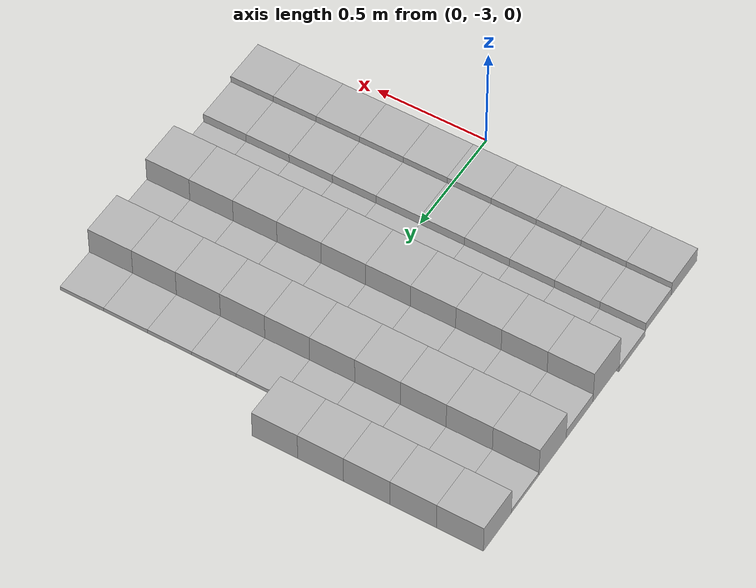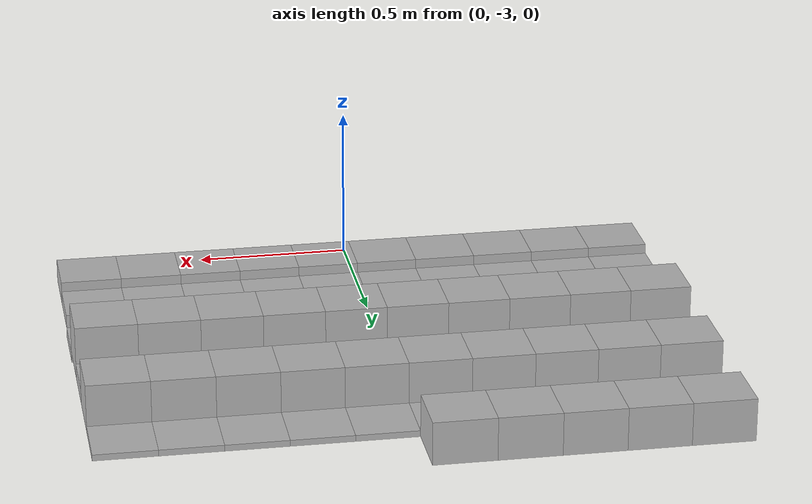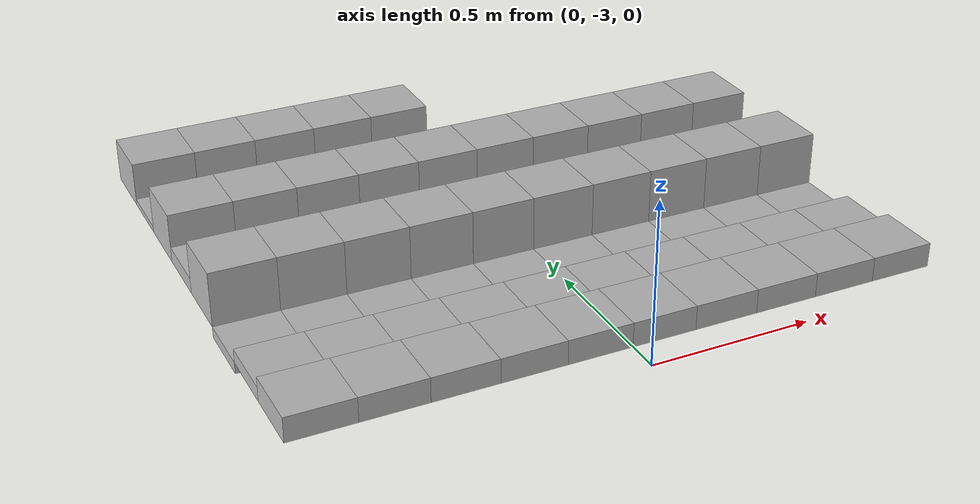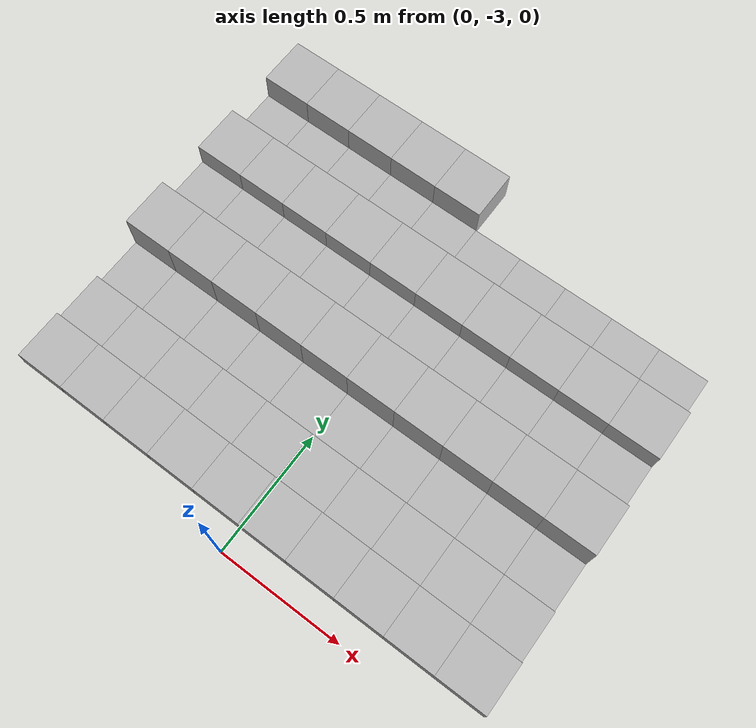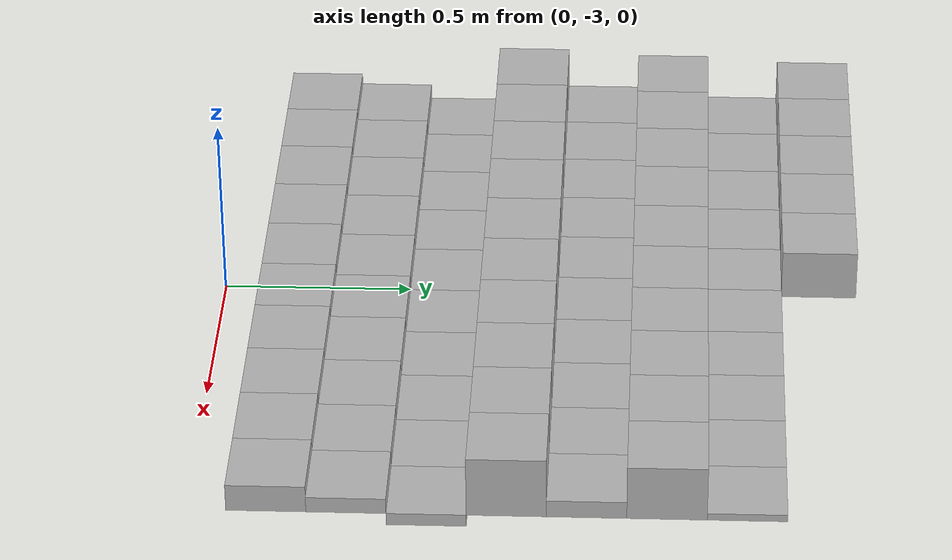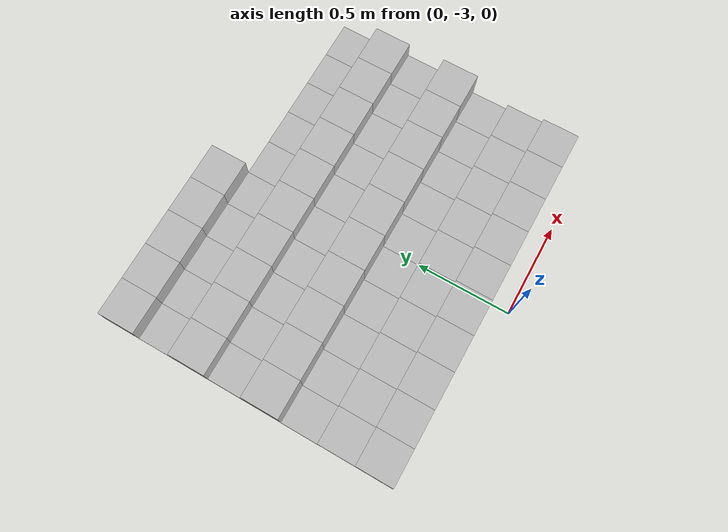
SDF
<sdf version="1.6">
 <model name="Terrain">
  <static>true</static>
  <link name="box_7_0">
   <pose>-0.9 -1.4 0.0701533673907 0 0 0</pose>
   <inertial>
    <mass>1.0</mass>
    <inertia><ixx>0.0</ixx><ixy>0.0</ixy><ixz>0.0</ixz><iyy>0.0</iyy><iyz>0.0</iyz><izz>0.0</izz></inertia>
   </inertial>
   <collision name="collision"><geometry><box><size>0.2 0.2 0.140306734781</size></box></geometry></collision>
   <visual name="visual"><geometry><box><size>0.2 0.2 0.140306734781</size></box></geometry></visual>
  </link>
  <link name="box_7_1">
   <pose>-0.7 -1.4 0.0701533673907 0 0 0</pose>
   <inertial>
    <mass>1.0</mass>
    <inertia><ixx>0.0</ixx><ixy>0.0</ixy><ixz>0.0</ixz><iyy>0.0</iyy><iyz>0.0</iyz><izz>0.0</izz></inertia>
   </inertial>
   <collision name="collision"><geometry><box><size>0.2 0.2 0.140306734781</size></box></geometry></collision>
   <visual name="visual"><geometry><box><size>0.2 0.2 0.140306734781</size></box></geometry></visual>
  </link>
  <link name="box_7_2">
   <pose>-0.5 -1.4 0.0701533673907 0 0 0</pose>
   <inertial>
    <mass>1.0</mass>
    <inertia><ixx>0.0</ixx><ixy>0.0</ixy><ixz>0.0</ixz><iyy>0.0</iyy><iyz>0.0</iyz><izz>0.0</izz></inertia>
   </inertial>
   <collision name="collision"><geometry><box><size>0.2 0.2 0.140306734781</size></box></geometry></collision>
   <visual name="visual"><geometry><box><size>0.2 0.2 0.140306734781</size></box></geometry></visual>
  </link>
  <link name="box_7_3">
   <pose>-0.3 -1.4 0.0701533673907 0 0 0</pose>
   <inertial>
    <mass>1.0</mass>
    <inertia><ixx>0.0</ixx><ixy>0.0</ixy><ixz>0.0</ixz><iyy>0.0</iyy><iyz>0.0</iyz><izz>0.0</izz></inertia>
   </inertial>
   <collision name="collision"><geometry><box><size>0.2 0.2 0.140306734781</size></box></geometry></collision>
   <visual name="visual"><geometry><box><size>0.2 0.2 0.140306734781</size></box></geometry></visual>
  </link>
  <link name="box_7_4">
   <pose>-0.1 -1.4 0.0701533673907 0 0 0</pose>
   <inertial>
    <mass>1.0</mass>
    <inertia><ixx>0.0</ixx><ixy>0.0</ixy><ixz>0.0</ixz><iyy>0.0</iyy><iyz>0.0</iyz><izz>0.0</izz></inertia>
   </inertial>
   <collision name="collision"><geometry><box><size>0.2 0.2 0.140306734781</size></box></geometry></collision>
   <visual name="visual"><geometry><box><size>0.2 0.2 0.140306734781</size></box></geometry></visual>
  </link>
  <link name="box_8_0">
   <pose>-0.9 -1.6 0.00999263746076 0 0 0</pose>
   <inertial>
    <mass>1.0</mass>
    <inertia><ixx>0.0</ixx><ixy>0.0</ixy><ixz>0.0</ixz><iyy>0.0</iyy><iyz>0.0</iyz><izz>0.0</izz></inertia>
   </inertial>
   <collision name="collision"><geometry><box><size>0.2 0.2 0.0199852749215</size></box></geometry></collision>
   <visual name="visual"><geometry><box><size>0.2 0.2 0.0199852749215</size></box></geometry></visual>
  </link>
  <link name="box_8_1">
   <pose>-0.7 -1.6 0.00999263746076 0 0 0</pose>
   <inertial>
    <mass>1.0</mass>
    <inertia><ixx>0.0</ixx><ixy>0.0</ixy><ixz>0.0</ixz><iyy>0.0</iyy><iyz>0.0</iyz><izz>0.0</izz></inertia>
   </inertial>
   <collision name="collision"><geometry><box><size>0.2 0.2 0.0199852749215</size></box></geometry></collision>
   <visual name="visual"><geometry><box><size>0.2 0.2 0.0199852749215</size></box></geometry></visual>
  </link>
  <link name="box_8_2">
   <pose>-0.5 -1.6 0.00999263746076 0 0 0</pose>
   <inertial>
    <mass>1.0</mass>
    <inertia><ixx>0.0</ixx><ixy>0.0</ixy><ixz>0.0</ixz><iyy>0.0</iyy><iyz>0.0</iyz><izz>0.0</izz></inertia>
   </inertial>
   <collision name="collision"><geometry><box><size>0.2 0.2 0.0199852749215</size></box></geometry></collision>
   <visual name="visual"><geometry><box><size>0.2 0.2 0.0199852749215</size></box></geometry></visual>
  </link>
  <link name="box_8_3">
   <pose>-0.3 -1.6 0.00999263746076 0 0 0</pose>
   <inertial>
    <mass>1.0</mass>
    <inertia><ixx>0.0</ixx><ixy>0.0</ixy><ixz>0.0</ixz><iyy>0.0</iyy><iyz>0.0</iyz><izz>0.0</izz></inertia>
   </inertial>
   <collision name="collision"><geometry><box><size>0.2 0.2 0.0199852749215</size></box></geometry></collision>
   <visual name="visual"><geometry><box><size>0.2 0.2 0.0199852749215</size></box></geometry></visual>
  </link>
  <link name="box_8_4">
   <pose>-0.1 -1.6 0.00999263746076 0 0 0</pose>
   <inertial>
    <mass>1.0</mass>
    <inertia><ixx>0.0</ixx><ixy>0.0</ixy><ixz>0.0</ixz><iyy>0.0</iyy><iyz>0.0</iyz><izz>0.0</izz></inertia>
   </inertial>
   <collision name="collision"><geometry><box><size>0.2 0.2 0.0199852749215</size></box></geometry></collision>
   <visual name="visual"><geometry><box><size>0.2 0.2 0.0199852749215</size></box></geometry></visual>
  </link>
  <link name="box_8_5">
   <pose>0.1 -1.6 0.00999263746076 0 0 0</pose>
   <inertial>
    <mass>1.0</mass>
    <inertia><ixx>0.0</ixx><ixy>0.0</ixy><ixz>0.0</ixz><iyy>0.0</iyy><iyz>0.0</iyz><izz>0.0</izz></inertia>
   </inertial>
   <collision name="collision"><geometry><box><size>0.2 0.2 0.0199852749215</size></box></geometry></collision>
   <visual name="visual"><geometry><box><size>0.2 0.2 0.0199852749215</size></box></geometry></visual>
  </link>
  <link name="box_8_6">
   <pose>0.3 -1.6 0.00999263746076 0 0 0</pose>
   <inertial>
    <mass>1.0</mass>
    <inertia><ixx>0.0</ixx><ixy>0.0</ixy><ixz>0.0</ixz><iyy>0.0</iyy><iyz>0.0</iyz><izz>0.0</izz></inertia>
   </inertial>
   <collision name="collision"><geometry><box><size>0.2 0.2 0.0199852749215</size></box></geometry></collision>
   <visual name="visual"><geometry><box><size>0.2 0.2 0.0199852749215</size></box></geometry></visual>
  </link>
  <link name="box_8_7">
   <pose>0.5 -1.6 0.00999263746076 0 0 0</pose>
   <inertial>
    <mass>1.0</mass>
    <inertia><ixx>0.0</ixx><ixy>0.0</ixy><ixz>0.0</ixz><iyy>0.0</iyy><iyz>0.0</iyz><izz>0.0</izz></inertia>
   </inertial>
   <collision name="collision"><geometry><box><size>0.2 0.2 0.0199852749215</size></box></geometry></collision>
   <visual name="visual"><geometry><box><size>0.2 0.2 0.0199852749215</size></box></geometry></visual>
  </link>
  <link name="box_8_8">
   <pose>0.7 -1.6 0.00999263746076 0 0 0</pose>
   <inertial>
    <mass>1.0</mass>
    <inertia><ixx>0.0</ixx><ixy>0.0</ixy><ixz>0.0</ixz><iyy>0.0</iyy><iyz>0.0</iyz><izz>0.0</izz></inertia>
   </inertial>
   <collision name="collision"><geometry><box><size>0.2 0.2 0.0199852749215</size></box></geometry></collision>
   <visual name="visual"><geometry><box><size>0.2 0.2 0.0199852749215</size></box></geometry></visual>
  </link>
  <link name="box_8_9">
   <pose>0.9 -1.6 0.00999263746076 0 0 0</pose>
   <inertial>
    <mass>1.0</mass>
    <inertia><ixx>0.0</ixx><ixy>0.0</ixy><ixz>0.0</ixz><iyy>0.0</iyy><iyz>0.0</iyz><izz>0.0</izz></inertia>
   </inertial>
   <collision name="collision"><geometry><box><size>0.2 0.2 0.0199852749215</size></box></geometry></collision>
   <visual name="visual"><geometry><box><size>0.2 0.2 0.0199852749215</size></box></geometry></visual>
  </link>
  <link name="box_9_0">
   <pose>-0.9 -1.8 0.0779183324947 0 0 0</pose>
   <inertial>
    <mass>1.0</mass>
    <inertia><ixx>0.0</ixx><ixy>0.0</ixy><ixz>0.0</ixz><iyy>0.0</iyy><iyz>0.0</iyz><izz>0.0</izz></inertia>
   </inertial>
   <collision name="collision"><geometry><box><size>0.2 0.2 0.155836664989</size></box></geometry></collision>
   <visual name="visual"><geometry><box><size>0.2 0.2 0.155836664989</size></box></geometry></visual>
  </link>
  <link name="box_9_1">
   <pose>-0.7 -1.8 0.0779183324947 0 0 0</pose>
   <inertial>
    <mass>1.0</mass>
    <inertia><ixx>0.0</ixx><ixy>0.0</ixy><ixz>0.0</ixz><iyy>0.0</iyy><iyz>0.0</iyz><izz>0.0</izz></inertia>
   </inertial>
   <collision name="collision"><geometry><box><size>0.2 0.2 0.155836664989</size></box></geometry></collision>
   <visual name="visual"><geometry><box><size>0.2 0.2 0.155836664989</size></box></geometry></visual>
  </link>
  <link name="box_9_2">
   <pose>-0.5 -1.8 0.0779183324947 0 0 0</pose>
   <inertial>
    <mass>1.0</mass>
    <inertia><ixx>0.0</ixx><ixy>0.0</ixy><ixz>0.0</ixz><iyy>0.0</iyy><iyz>0.0</iyz><izz>0.0</izz></inertia>
   </inertial>
   <collision name="collision"><geometry><box><size>0.2 0.2 0.155836664989</size></box></geometry></collision>
   <visual name="visual"><geometry><box><size>0.2 0.2 0.155836664989</size></box></geometry></visual>
  </link>
  <link name="box_9_3">
   <pose>-0.3 -1.8 0.0779183324947 0 0 0</pose>
   <inertial>
    <mass>1.0</mass>
    <inertia><ixx>0.0</ixx><ixy>0.0</ixy><ixz>0.0</ixz><iyy>0.0</iyy><iyz>0.0</iyz><izz>0.0</izz></inertia>
   </inertial>
   <collision name="collision"><geometry><box><size>0.2 0.2 0.155836664989</size></box></geometry></collision>
   <visual name="visual"><geometry><box><size>0.2 0.2 0.155836664989</size></box></geometry></visual>
  </link>
  <link name="box_9_4">
   <pose>-0.1 -1.8 0.0779183324947 0 0 0</pose>
   <inertial>
    <mass>1.0</mass>
    <inertia><ixx>0.0</ixx><ixy>0.0</ixy><ixz>0.0</ixz><iyy>0.0</iyy><iyz>0.0</iyz><izz>0.0</izz></inertia>
   </inertial>
   <collision name="collision"><geometry><box><size>0.2 0.2 0.155836664989</size></box></geometry></collision>
   <visual name="visual"><geometry><box><size>0.2 0.2 0.155836664989</size></box></geometry></visual>
  </link>
  <link name="box_9_5">
   <pose>0.1 -1.8 0.0779183324947 0 0 0</pose>
   <inertial>
    <mass>1.0</mass>
    <inertia><ixx>0.0</ixx><ixy>0.0</ixy><ixz>0.0</ixz><iyy>0.0</iyy><iyz>0.0</iyz><izz>0.0</izz></inertia>
   </inertial>
   <collision name="collision"><geometry><box><size>0.2 0.2 0.155836664989</size></box></geometry></collision>
   <visual name="visual"><geometry><box><size>0.2 0.2 0.155836664989</size></box></geometry></visual>
  </link>
  <link name="box_9_6">
   <pose>0.3 -1.8 0.0779183324947 0 0 0</pose>
   <inertial>
    <mass>1.0</mass>
    <inertia><ixx>0.0</ixx><ixy>0.0</ixy><ixz>0.0</ixz><iyy>0.0</iyy><iyz>0.0</iyz><izz>0.0</izz></inertia>
   </inertial>
   <collision name="collision"><geometry><box><size>0.2 0.2 0.155836664989</size></box></geometry></collision>
   <visual name="visual"><geometry><box><size>0.2 0.2 0.155836664989</size></box></geometry></visual>
  </link>
  <link name="box_9_7">
   <pose>0.5 -1.8 0.0779183324947 0 0 0</pose>
   <inertial>
    <mass>1.0</mass>
    <inertia><ixx>0.0</ixx><ixy>0.0</ixy><ixz>0.0</ixz><iyy>0.0</iyy><iyz>0.0</iyz><izz>0.0</izz></inertia>
   </inertial>
   <collision name="collision"><geometry><box><size>0.2 0.2 0.155836664989</size></box></geometry></collision>
   <visual name="visual"><geometry><box><size>0.2 0.2 0.155836664989</size></box></geometry></visual>
  </link>
  <link name="box_9_8">
   <pose>0.7 -1.8 0.0779183324947 0 0 0</pose>
   <inertial>
    <mass>1.0</mass>
    <inertia><ixx>0.0</ixx><ixy>0.0</ixy><ixz>0.0</ixz><iyy>0.0</iyy><iyz>0.0</iyz><izz>0.0</izz></inertia>
   </inertial>
   <collision name="collision"><geometry><box><size>0.2 0.2 0.155836664989</size></box></geometry></collision>
   <visual name="visual"><geometry><box><size>0.2 0.2 0.155836664989</size></box></geometry></visual>
  </link>
  <link name="box_9_9">
   <pose>0.9 -1.8 0.0779183324947 0 0 0</pose>
   <inertial>
    <mass>1.0</mass>
    <inertia><ixx>0.0</ixx><ixy>0.0</ixy><ixz>0.0</ixz><iyy>0.0</iyy><iyz>0.0</iyz><izz>0.0</izz></inertia>
   </inertial>
   <collision name="collision"><geometry><box><size>0.2 0.2 0.155836664989</size></box></geometry></collision>
   <visual name="visual"><geometry><box><size>0.2 0.2 0.155836664989</size></box></geometry></visual>
  </link>
  <link name="box_10_0">
   <pose>-0.9 -2.0 0.0245761472312 0 0 0</pose>
   <inertial>
    <mass>1.0</mass>
    <inertia><ixx>0.0</ixx><ixy>0.0</ixy><ixz>0.0</ixz><iyy>0.0</iyy><iyz>0.0</iyz><izz>0.0</izz></inertia>
   </inertial>
   <collision name="collision"><geometry><box><size>0.2 0.2 0.0491522944623</size></box></geometry></collision>
   <visual name="visual"><geometry><box><size>0.2 0.2 0.0491522944623</size></box></geometry></visual>
  </link>
  <link name="box_10_1">
   <pose>-0.7 -2.0 0.0245761472312 0 0 0</pose>
   <inertial>
    <mass>1.0</mass>
    <inertia><ixx>0.0</ixx><ixy>0.0</ixy><ixz>0.0</ixz><iyy>0.0</iyy><iyz>0.0</iyz><izz>0.0</izz></inertia>
   </inertial>
   <collision name="collision"><geometry><box><size>0.2 0.2 0.0491522944623</size></box></geometry></collision>
   <visual name="visual"><geometry><box><size>0.2 0.2 0.0491522944623</size></box></geometry></visual>
  </link>
  <link name="box_10_2">
   <pose>-0.5 -2.0 0.0245761472312 0 0 0</pose>
   <inertial>
    <mass>1.0</mass>
    <inertia><ixx>0.0</ixx><ixy>0.0</ixy><ixz>0.0</ixz><iyy>0.0</iyy><iyz>0.0</iyz><izz>0.0</izz></inertia>
   </inertial>
   <collision name="collision"><geometry><box><size>0.2 0.2 0.0491522944623</size></box></geometry></collision>
   <visual name="visual"><geometry><box><size>0.2 0.2 0.0491522944623</size></box></geometry></visual>
  </link>
  <link name="box_10_3">
   <pose>-0.3 -2.0 0.0245761472312 0 0 0</pose>
   <inertial>
    <mass>1.0</mass>
    <inertia><ixx>0.0</ixx><ixy>0.0</ixy><ixz>0.0</ixz><iyy>0.0</iyy><iyz>0.0</iyz><izz>0.0</izz></inertia>
   </inertial>
   <collision name="collision"><geometry><box><size>0.2 0.2 0.0491522944623</size></box></geometry></collision>
   <visual name="visual"><geometry><box><size>0.2 0.2 0.0491522944623</size></box></geometry></visual>
  </link>
  <link name="box_10_4">
   <pose>-0.1 -2.0 0.0245761472312 0 0 0</pose>
   <inertial>
    <mass>1.0</mass>
    <inertia><ixx>0.0</ixx><ixy>0.0</ixy><ixz>0.0</ixz><iyy>0.0</iyy><iyz>0.0</iyz><izz>0.0</izz></inertia>
   </inertial>
   <collision name="collision"><geometry><box><size>0.2 0.2 0.0491522944623</size></box></geometry></collision>
   <visual name="visual"><geometry><box><size>0.2 0.2 0.0491522944623</size></box></geometry></visual>
  </link>
  <link name="box_10_5">
   <pose>0.1 -2.0 0.0245761472312 0 0 0</pose>
   <inertial>
    <mass>1.0</mass>
    <inertia><ixx>0.0</ixx><ixy>0.0</ixy><ixz>0.0</ixz><iyy>0.0</iyy><iyz>0.0</iyz><izz>0.0</izz></inertia>
   </inertial>
   <collision name="collision"><geometry><box><size>0.2 0.2 0.0491522944623</size></box></geometry></collision>
   <visual name="visual"><geometry><box><size>0.2 0.2 0.0491522944623</size></box></geometry></visual>
  </link>
  <link name="box_10_6">
   <pose>0.3 -2.0 0.0245761472312 0 0 0</pose>
   <inertial>
    <mass>1.0</mass>
    <inertia><ixx>0.0</ixx><ixy>0.0</ixy><ixz>0.0</ixz><iyy>0.0</iyy><iyz>0.0</iyz><izz>0.0</izz></inertia>
   </inertial>
   <collision name="collision"><geometry><box><size>0.2 0.2 0.0491522944623</size></box></geometry></collision>
   <visual name="visual"><geometry><box><size>0.2 0.2 0.0491522944623</size></box></geometry></visual>
  </link>
  <link name="box_10_7">
   <pose>0.5 -2.0 0.0245761472312 0 0 0</pose>
   <inertial>
    <mass>1.0</mass>
    <inertia><ixx>0.0</ixx><ixy>0.0</ixy><ixz>0.0</ixz><iyy>0.0</iyy><iyz>0.0</iyz><izz>0.0</izz></inertia>
   </inertial>
   <collision name="collision"><geometry><box><size>0.2 0.2 0.0491522944623</size></box></geometry></collision>
   <visual name="visual"><geometry><box><size>0.2 0.2 0.0491522944623</size></box></geometry></visual>
  </link>
  <link name="box_10_8">
   <pose>0.7 -2.0 0.0245761472312 0 0 0</pose>
   <inertial>
    <mass>1.0</mass>
    <inertia><ixx>0.0</ixx><ixy>0.0</ixy><ixz>0.0</ixz><iyy>0.0</iyy><iyz>0.0</iyz><izz>0.0</izz></inertia>
   </inertial>
   <collision name="collision"><geometry><box><size>0.2 0.2 0.0491522944623</size></box></geometry></collision>
   <visual name="visual"><geometry><box><size>0.2 0.2 0.0491522944623</size></box></geometry></visual>
  </link>
  <link name="box_10_9">
   <pose>0.9 -2.0 0.0245761472312 0 0 0</pose>
   <inertial>
    <mass>1.0</mass>
    <inertia><ixx>0.0</ixx><ixy>0.0</ixy><ixz>0.0</ixz><iyy>0.0</iyy><iyz>0.0</iyz><izz>0.0</izz></inertia>
   </inertial>
   <collision name="collision"><geometry><box><size>0.2 0.2 0.0491522944623</size></box></geometry></collision>
   <visual name="visual"><geometry><box><size>0.2 0.2 0.0491522944623</size></box></geometry></visual>
  </link>
  <link name="box_11_0">
   <pose>-0.9 -2.2 0.0857353216861 0 0 0</pose>
   <inertial>
    <mass>1.0</mass>
    <inertia><ixx>0.0</ixx><ixy>0.0</ixy><ixz>0.0</ixz><iyy>0.0</iyy><iyz>0.0</iyz><izz>0.0</izz></inertia>
   </inertial>
   <collision name="collision"><geometry><box><size>0.2 0.2 0.171470643372</size></box></geometry></collision>
   <visual name="visual"><geometry><box><size>0.2 0.2 0.171470643372</size></box></geometry></visual>
  </link>
  <link name="box_11_1">
   <pose>-0.7 -2.2 0.0857353216861 0 0 0</pose>
   <inertial>
    <mass>1.0</mass>
    <inertia><ixx>0.0</ixx><ixy>0.0</ixy><ixz>0.0</ixz><iyy>0.0</iyy><iyz>0.0</iyz><izz>0.0</izz></inertia>
   </inertial>
   <collision name="collision"><geometry><box><size>0.2 0.2 0.171470643372</size></box></geometry></collision>
   <visual name="visual"><geometry><box><size>0.2 0.2 0.171470643372</size></box></geometry></visual>
  </link>
  <link name="box_11_2">
   <pose>-0.5 -2.2 0.0857353216861 0 0 0</pose>
   <inertial>
    <mass>1.0</mass>
    <inertia><ixx>0.0</ixx><ixy>0.0</ixy><ixz>0.0</ixz><iyy>0.0</iyy><iyz>0.0</iyz><izz>0.0</izz></inertia>
   </inertial>
   <collision name="collision"><geometry><box><size>0.2 0.2 0.171470643372</size></box></geometry></collision>
   <visual name="visual"><geometry><box><size>0.2 0.2 0.171470643372</size></box></geometry></visual>
  </link>
  <link name="box_11_3">
   <pose>-0.3 -2.2 0.0857353216861 0 0 0</pose>
   <inertial>
    <mass>1.0</mass>
    <inertia><ixx>0.0</ixx><ixy>0.0</ixy><ixz>0.0</ixz><iyy>0.0</iyy><iyz>0.0</iyz><izz>0.0</izz></inertia>
   </inertial>
   <collision name="collision"><geometry><box><size>0.2 0.2 0.171470643372</size></box></geometry></collision>
   <visual name="visual"><geometry><box><size>0.2 0.2 0.171470643372</size></box></geometry></visual>
  </link>
  <link name="box_11_4">
   <pose>-0.1 -2.2 0.0857353216861 0 0 0</pose>
   <inertial>
    <mass>1.0</mass>
    <inertia><ixx>0.0</ixx><ixy>0.0</ixy><ixz>0.0</ixz><iyy>0.0</iyy><iyz>0.0</iyz><izz>0.0</izz></inertia>
   </inertial>
   <collision name="collision"><geometry><box><size>0.2 0.2 0.171470643372</size></box></geometry></collision>
   <visual name="visual"><geometry><box><size>0.2 0.2 0.171470643372</size></box></geometry></visual>
  </link>
  <link name="box_11_5">
   <pose>0.1 -2.2 0.0857353216861 0 0 0</pose>
   <inertial>
    <mass>1.0</mass>
    <inertia><ixx>0.0</ixx><ixy>0.0</ixy><ixz>0.0</ixz><iyy>0.0</iyy><iyz>0.0</iyz><izz>0.0</izz></inertia>
   </inertial>
   <collision name="collision"><geometry><box><size>0.2 0.2 0.171470643372</size></box></geometry></collision>
   <visual name="visual"><geometry><box><size>0.2 0.2 0.171470643372</size></box></geometry></visual>
  </link>
  <link name="box_11_6">
   <pose>0.3 -2.2 0.0857353216861 0 0 0</pose>
   <inertial>
    <mass>1.0</mass>
    <inertia><ixx>0.0</ixx><ixy>0.0</ixy><ixz>0.0</ixz><iyy>0.0</iyy><iyz>0.0</iyz><izz>0.0</izz></inertia>
   </inertial>
   <collision name="collision"><geometry><box><size>0.2 0.2 0.171470643372</size></box></geometry></collision>
   <visual name="visual"><geometry><box><size>0.2 0.2 0.171470643372</size></box></geometry></visual>
  </link>
  <link name="box_11_7">
   <pose>0.5 -2.2 0.0857353216861 0 0 0</pose>
   <inertial>
    <mass>1.0</mass>
    <inertia><ixx>0.0</ixx><ixy>0.0</ixy><ixz>0.0</ixz><iyy>0.0</iyy><iyz>0.0</iyz><izz>0.0</izz></inertia>
   </inertial>
   <collision name="collision"><geometry><box><size>0.2 0.2 0.171470643372</size></box></geometry></collision>
   <visual name="visual"><geometry><box><size>0.2 0.2 0.171470643372</size></box></geometry></visual>
  </link>
  <link name="box_11_8">
   <pose>0.7 -2.2 0.0857353216861 0 0 0</pose>
   <inertial>
    <mass>1.0</mass>
    <inertia><ixx>0.0</ixx><ixy>0.0</ixy><ixz>0.0</ixz><iyy>0.0</iyy><iyz>0.0</iyz><izz>0.0</izz></inertia>
   </inertial>
   <collision name="collision"><geometry><box><size>0.2 0.2 0.171470643372</size></box></geometry></collision>
   <visual name="visual"><geometry><box><size>0.2 0.2 0.171470643372</size></box></geometry></visual>
  </link>
  <link name="box_11_9">
   <pose>0.9 -2.2 0.0857353216861 0 0 0</pose>
   <inertial>
    <mass>1.0</mass>
    <inertia><ixx>0.0</ixx><ixy>0.0</ixy><ixz>0.0</ixz><iyy>0.0</iyy><iyz>0.0</iyz><izz>0.0</izz></inertia>
   </inertial>
   <collision name="collision"><geometry><box><size>0.2 0.2 0.171470643372</size></box></geometry></collision>
   <visual name="visual"><geometry><box><size>0.2 0.2 0.171470643372</size></box></geometry></visual>
  </link>
  <link name="box_12_0">
   <pose>-0.9 -2.4 -0.0174184547427 0 0 0</pose>
   <inertial>
    <mass>1.0</mass>
    <inertia><ixx>0.0</ixx><ixy>0.0</ixy><ixz>0.0</ixz><iyy>0.0</iyy><iyz>0.0</iyz><izz>0.0</izz></inertia>
   </inertial>
   <collision name="collision"><geometry><box><size>0.2 0.2 -0.0348369094855</size></box></geometry></collision>
   <visual name="visual"><geometry><box><size>0.2 0.2 -0.0348369094855</size></box></geometry></visual>
  </link>
  <link name="box_12_1">
   <pose>-0.7 -2.4 -0.0174184547427 0 0 0</pose>
   <inertial>
    <mass>1.0</mass>
    <inertia><ixx>0.0</ixx><ixy>0.0</ixy><ixz>0.0</ixz><iyy>0.0</iyy><iyz>0.0</iyz><izz>0.0</izz></inertia>
   </inertial>
   <collision name="collision"><geometry><box><size>0.2 0.2 -0.0348369094855</size></box></geometry></collision>
   <visual name="visual"><geometry><box><size>0.2 0.2 -0.0348369094855</size></box></geometry></visual>
  </link>
  <link name="box_12_2">
   <pose>-0.5 -2.4 -0.0174184547427 0 0 0</pose>
   <inertial>
    <mass>1.0</mass>
    <inertia><ixx>0.0</ixx><ixy>0.0</ixy><ixz>0.0</ixz><iyy>0.0</iyy><iyz>0.0</iyz><izz>0.0</izz></inertia>
   </inertial>
   <collision name="collision"><geometry><box><size>0.2 0.2 -0.0348369094855</size></box></geometry></collision>
   <visual name="visual"><geometry><box><size>0.2 0.2 -0.0348369094855</size></box></geometry></visual>
  </link>
  <link name="box_12_3">
   <pose>-0.3 -2.4 -0.0174184547427 0 0 0</pose>
   <inertial>
    <mass>1.0</mass>
    <inertia><ixx>0.0</ixx><ixy>0.0</ixy><ixz>0.0</ixz><iyy>0.0</iyy><iyz>0.0</iyz><izz>0.0</izz></inertia>
   </inertial>
   <collision name="collision"><geometry><box><size>0.2 0.2 -0.0348369094855</size></box></geometry></collision>
   <visual name="visual"><geometry><box><size>0.2 0.2 -0.0348369094855</size></box></geometry></visual>
  </link>
  <link name="box_12_4">
   <pose>-0.1 -2.4 -0.0174184547427 0 0 0</pose>
   <inertial>
    <mass>1.0</mass>
    <inertia><ixx>0.0</ixx><ixy>0.0</ixy><ixz>0.0</ixz><iyy>0.0</iyy><iyz>0.0</iyz><izz>0.0</izz></inertia>
   </inertial>
   <collision name="collision"><geometry><box><size>0.2 0.2 -0.0348369094855</size></box></geometry></collision>
   <visual name="visual"><geometry><box><size>0.2 0.2 -0.0348369094855</size></box></geometry></visual>
  </link>
  <link name="box_12_5">
   <pose>0.1 -2.4 -0.0174184547427 0 0 0</pose>
   <inertial>
    <mass>1.0</mass>
    <inertia><ixx>0.0</ixx><ixy>0.0</ixy><ixz>0.0</ixz><iyy>0.0</iyy><iyz>0.0</iyz><izz>0.0</izz></inertia>
   </inertial>
   <collision name="collision"><geometry><box><size>0.2 0.2 -0.0348369094855</size></box></geometry></collision>
   <visual name="visual"><geometry><box><size>0.2 0.2 -0.0348369094855</size></box></geometry></visual>
  </link>
  <link name="box_12_6">
   <pose>0.3 -2.4 -0.0174184547427 0 0 0</pose>
   <inertial>
    <mass>1.0</mass>
    <inertia><ixx>0.0</ixx><ixy>0.0</ixy><ixz>0.0</ixz><iyy>0.0</iyy><iyz>0.0</iyz><izz>0.0</izz></inertia>
   </inertial>
   <collision name="collision"><geometry><box><size>0.2 0.2 -0.0348369094855</size></box></geometry></collision>
   <visual name="visual"><geometry><box><size>0.2 0.2 -0.0348369094855</size></box></geometry></visual>
  </link>
  <link name="box_12_7">
   <pose>0.5 -2.4 -0.0174184547427 0 0 0</pose>
   <inertial>
    <mass>1.0</mass>
    <inertia><ixx>0.0</ixx><ixy>0.0</ixy><ixz>0.0</ixz><iyy>0.0</iyy><iyz>0.0</iyz><izz>0.0</izz></inertia>
   </inertial>
   <collision name="collision"><geometry><box><size>0.2 0.2 -0.0348369094855</size></box></geometry></collision>
   <visual name="visual"><geometry><box><size>0.2 0.2 -0.0348369094855</size></box></geometry></visual>
  </link>
  <link name="box_12_8">
   <pose>0.7 -2.4 -0.0174184547427 0 0 0</pose>
   <inertial>
    <mass>1.0</mass>
    <inertia><ixx>0.0</ixx><ixy>0.0</ixy><ixz>0.0</ixz><iyy>0.0</iyy><iyz>0.0</iyz><izz>0.0</izz></inertia>
   </inertial>
   <collision name="collision"><geometry><box><size>0.2 0.2 -0.0348369094855</size></box></geometry></collision>
   <visual name="visual"><geometry><box><size>0.2 0.2 -0.0348369094855</size></box></geometry></visual>
  </link>
  <link name="box_12_9">
   <pose>0.9 -2.4 -0.0174184547427 0 0 0</pose>
   <inertial>
    <mass>1.0</mass>
    <inertia><ixx>0.0</ixx><ixy>0.0</ixy><ixz>0.0</ixz><iyy>0.0</iyy><iyz>0.0</iyz><izz>0.0</izz></inertia>
   </inertial>
   <collision name="collision"><geometry><box><size>0.2 0.2 -0.0348369094855</size></box></geometry></collision>
   <visual name="visual"><geometry><box><size>0.2 0.2 -0.0348369094855</size></box></geometry></visual>
  </link>
  <link name="box_13_0">
   <pose>-0.9 -2.6 0.0221365836445 0 0 0</pose>
   <inertial>
    <mass>1.0</mass>
    <inertia><ixx>0.0</ixx><ixy>0.0</ixy><ixz>0.0</ixz><iyy>0.0</iyy><iyz>0.0</iyz><izz>0.0</izz></inertia>
   </inertial>
   <collision name="collision"><geometry><box><size>0.2 0.2 0.0442731672889</size></box></geometry></collision>
   <visual name="visual"><geometry><box><size>0.2 0.2 0.0442731672889</size></box></geometry></visual>
  </link>
  <link name="box_13_1">
   <pose>-0.7 -2.6 0.0221365836445 0 0 0</pose>
   <inertial>
    <mass>1.0</mass>
    <inertia><ixx>0.0</ixx><ixy>0.0</ixy><ixz>0.0</ixz><iyy>0.0</iyy><iyz>0.0</iyz><izz>0.0</izz></inertia>
   </inertial>
   <collision name="collision"><geometry><box><size>0.2 0.2 0.0442731672889</size></box></geometry></collision>
   <visual name="visual"><geometry><box><size>0.2 0.2 0.0442731672889</size></box></geometry></visual>
  </link>
  <link name="box_13_2">
   <pose>-0.5 -2.6 0.0221365836445 0 0 0</pose>
   <inertial>
    <mass>1.0</mass>
    <inertia><ixx>0.0</ixx><ixy>0.0</ixy><ixz>0.0</ixz><iyy>0.0</iyy><iyz>0.0</iyz><izz>0.0</izz></inertia>
   </inertial>
   <collision name="collision"><geometry><box><size>0.2 0.2 0.0442731672889</size></box></geometry></collision>
   <visual name="visual"><geometry><box><size>0.2 0.2 0.0442731672889</size></box></geometry></visual>
  </link>
  <link name="box_13_3">
   <pose>-0.3 -2.6 0.0221365836445 0 0 0</pose>
   <inertial>
    <mass>1.0</mass>
    <inertia><ixx>0.0</ixx><ixy>0.0</ixy><ixz>0.0</ixz><iyy>0.0</iyy><iyz>0.0</iyz><izz>0.0</izz></inertia>
   </inertial>
   <collision name="collision"><geometry><box><size>0.2 0.2 0.0442731672889</size></box></geometry></collision>
   <visual name="visual"><geometry><box><size>0.2 0.2 0.0442731672889</size></box></geometry></visual>
  </link>
  <link name="box_13_4">
   <pose>-0.1 -2.6 0.0221365836445 0 0 0</pose>
   <inertial>
    <mass>1.0</mass>
    <inertia><ixx>0.0</ixx><ixy>0.0</ixy><ixz>0.0</ixz><iyy>0.0</iyy><iyz>0.0</iyz><izz>0.0</izz></inertia>
   </inertial>
   <collision name="collision"><geometry><box><size>0.2 0.2 0.0442731672889</size></box></geometry></collision>
   <visual name="visual"><geometry><box><size>0.2 0.2 0.0442731672889</size></box></geometry></visual>
  </link>
  <link name="box_13_5">
   <pose>0.1 -2.6 0.0221365836445 0 0 0</pose>
   <inertial>
    <mass>1.0</mass>
    <inertia><ixx>0.0</ixx><ixy>0.0</ixy><ixz>0.0</ixz><iyy>0.0</iyy><iyz>0.0</iyz><izz>0.0</izz></inertia>
   </inertial>
   <collision name="collision"><geometry><box><size>0.2 0.2 0.0442731672889</size></box></geometry></collision>
   <visual name="visual"><geometry><box><size>0.2 0.2 0.0442731672889</size></box></geometry></visual>
  </link>
  <link name="box_13_6">
   <pose>0.3 -2.6 0.0221365836445 0 0 0</pose>
   <inertial>
    <mass>1.0</mass>
    <inertia><ixx>0.0</ixx><ixy>0.0</ixy><ixz>0.0</ixz><iyy>0.0</iyy><iyz>0.0</iyz><izz>0.0</izz></inertia>
   </inertial>
   <collision name="collision"><geometry><box><size>0.2 0.2 0.0442731672889</size></box></geometry></collision>
   <visual name="visual"><geometry><box><size>0.2 0.2 0.0442731672889</size></box></geometry></visual>
  </link>
  <link name="box_13_7">
   <pose>0.5 -2.6 0.0221365836445 0 0 0</pose>
   <inertial>
    <mass>1.0</mass>
    <inertia><ixx>0.0</ixx><ixy>0.0</ixy><ixz>0.0</ixz><iyy>0.0</iyy><iyz>0.0</iyz><izz>0.0</izz></inertia>
   </inertial>
   <collision name="collision"><geometry><box><size>0.2 0.2 0.0442731672889</size></box></geometry></collision>
   <visual name="visual"><geometry><box><size>0.2 0.2 0.0442731672889</size></box></geometry></visual>
  </link>
  <link name="box_13_8">
   <pose>0.7 -2.6 0.0221365836445 0 0 0</pose>
   <inertial>
    <mass>1.0</mass>
    <inertia><ixx>0.0</ixx><ixy>0.0</ixy><ixz>0.0</ixz><iyy>0.0</iyy><iyz>0.0</iyz><izz>0.0</izz></inertia>
   </inertial>
   <collision name="collision"><geometry><box><size>0.2 0.2 0.0442731672889</size></box></geometry></collision>
   <visual name="visual"><geometry><box><size>0.2 0.2 0.0442731672889</size></box></geometry></visual>
  </link>
  <link name="box_13_9">
   <pose>0.9 -2.6 0.0221365836445 0 0 0</pose>
   <inertial>
    <mass>1.0</mass>
    <inertia><ixx>0.0</ixx><ixy>0.0</ixy><ixz>0.0</ixz><iyy>0.0</iyy><iyz>0.0</iyz><izz>0.0</izz></inertia>
   </inertial>
   <collision name="collision"><geometry><box><size>0.2 0.2 0.0442731672889</size></box></geometry></collision>
   <visual name="visual"><geometry><box><size>0.2 0.2 0.0442731672889</size></box></geometry></visual>
  </link>
  <link name="box_14_0">
   <pose>-0.9 -2.8 0.0383231088802 0 0 0</pose>
   <inertial>
    <mass>1.0</mass>
    <inertia><ixx>0.0</ixx><ixy>0.0</ixy><ixz>0.0</ixz><iyy>0.0</iyy><iyz>0.0</iyz><izz>0.0</izz></inertia>
   </inertial>
   <collision name="collision"><geometry><box><size>0.2 0.2 0.0766462177604</size></box></geometry></collision>
   <visual name="visual"><geometry><box><size>0.2 0.2 0.0766462177604</size></box></geometry></visual>
  </link>
  <link name="box_14_1">
   <pose>-0.7 -2.8 0.0383231088802 0 0 0</pose>
   <inertial>
    <mass>1.0</mass>
    <inertia><ixx>0.0</ixx><ixy>0.0</ixy><ixz>0.0</ixz><iyy>0.0</iyy><iyz>0.0</iyz><izz>0.0</izz></inertia>
   </inertial>
   <collision name="collision"><geometry><box><size>0.2 0.2 0.0766462177604</size></box></geometry></collision>
   <visual name="visual"><geometry><box><size>0.2 0.2 0.0766462177604</size></box></geometry></visual>
  </link>
  <link name="box_14_2">
   <pose>-0.5 -2.8 0.0383231088802 0 0 0</pose>
   <inertial>
    <mass>1.0</mass>
    <inertia><ixx>0.0</ixx><ixy>0.0</ixy><ixz>0.0</ixz><iyy>0.0</iyy><iyz>0.0</iyz><izz>0.0</izz></inertia>
   </inertial>
   <collision name="collision"><geometry><box><size>0.2 0.2 0.0766462177604</size></box></geometry></collision>
   <visual name="visual"><geometry><box><size>0.2 0.2 0.0766462177604</size></box></geometry></visual>
  </link>
  <link name="box_14_3">
   <pose>-0.3 -2.8 0.0383231088802 0 0 0</pose>
   <inertial>
    <mass>1.0</mass>
    <inertia><ixx>0.0</ixx><ixy>0.0</ixy><ixz>0.0</ixz><iyy>0.0</iyy><iyz>0.0</iyz><izz>0.0</izz></inertia>
   </inertial>
   <collision name="collision"><geometry><box><size>0.2 0.2 0.0766462177604</size></box></geometry></collision>
   <visual name="visual"><geometry><box><size>0.2 0.2 0.0766462177604</size></box></geometry></visual>
  </link>
  <link name="box_14_4">
   <pose>-0.1 -2.8 0.0383231088802 0 0 0</pose>
   <inertial>
    <mass>1.0</mass>
    <inertia><ixx>0.0</ixx><ixy>0.0</ixy><ixz>0.0</ixz><iyy>0.0</iyy><iyz>0.0</iyz><izz>0.0</izz></inertia>
   </inertial>
   <collision name="collision"><geometry><box><size>0.2 0.2 0.0766462177604</size></box></geometry></collision>
   <visual name="visual"><geometry><box><size>0.2 0.2 0.0766462177604</size></box></geometry></visual>
  </link>
  <link name="box_14_5">
   <pose>0.1 -2.8 0.0383231088802 0 0 0</pose>
   <inertial>
    <mass>1.0</mass>
    <inertia><ixx>0.0</ixx><ixy>0.0</ixy><ixz>0.0</ixz><iyy>0.0</iyy><iyz>0.0</iyz><izz>0.0</izz></inertia>
   </inertial>
   <collision name="collision"><geometry><box><size>0.2 0.2 0.0766462177604</size></box></geometry></collision>
   <visual name="visual"><geometry><box><size>0.2 0.2 0.0766462177604</size></box></geometry></visual>
  </link>
  <link name="box_14_6">
   <pose>0.3 -2.8 0.0383231088802 0 0 0</pose>
   <inertial>
    <mass>1.0</mass>
    <inertia><ixx>0.0</ixx><ixy>0.0</ixy><ixz>0.0</ixz><iyy>0.0</iyy><iyz>0.0</iyz><izz>0.0</izz></inertia>
   </inertial>
   <collision name="collision"><geometry><box><size>0.2 0.2 0.0766462177604</size></box></geometry></collision>
   <visual name="visual"><geometry><box><size>0.2 0.2 0.0766462177604</size></box></geometry></visual>
  </link>
  <link name="box_14_7">
   <pose>0.5 -2.8 0.0383231088802 0 0 0</pose>
   <inertial>
    <mass>1.0</mass>
    <inertia><ixx>0.0</ixx><ixy>0.0</ixy><ixz>0.0</ixz><iyy>0.0</iyy><iyz>0.0</iyz><izz>0.0</izz></inertia>
   </inertial>
   <collision name="collision"><geometry><box><size>0.2 0.2 0.0766462177604</size></box></geometry></collision>
   <visual name="visual"><geometry><box><size>0.2 0.2 0.0766462177604</size></box></geometry></visual>
  </link>
  <link name="box_14_8">
   <pose>0.7 -2.8 0.0383231088802 0 0 0</pose>
   <inertial>
    <mass>1.0</mass>
    <inertia><ixx>0.0</ixx><ixy>0.0</ixy><ixz>0.0</ixz><iyy>0.0</iyy><iyz>0.0</iyz><izz>0.0</izz></inertia>
   </inertial>
   <collision name="collision"><geometry><box><size>0.2 0.2 0.0766462177604</size></box></geometry></collision>
   <visual name="visual"><geometry><box><size>0.2 0.2 0.0766462177604</size></box></geometry></visual>
  </link>
  <link name="box_14_9">
   <pose>0.9 -2.8 0.0383231088802 0 0 0</pose>
   <inertial>
    <mass>1.0</mass>
    <inertia><ixx>0.0</ixx><ixy>0.0</ixy><ixz>0.0</ixz><iyy>0.0</iyy><iyz>0.0</iyz><izz>0.0</izz></inertia>
   </inertial>
   <collision name="collision"><geometry><box><size>0.2 0.2 0.0766462177604</size></box></geometry></collision>
   <visual name="visual"><geometry><box><size>0.2 0.2 0.0766462177604</size></box></geometry></visual>
  </link>
 </model>
</sdf>
